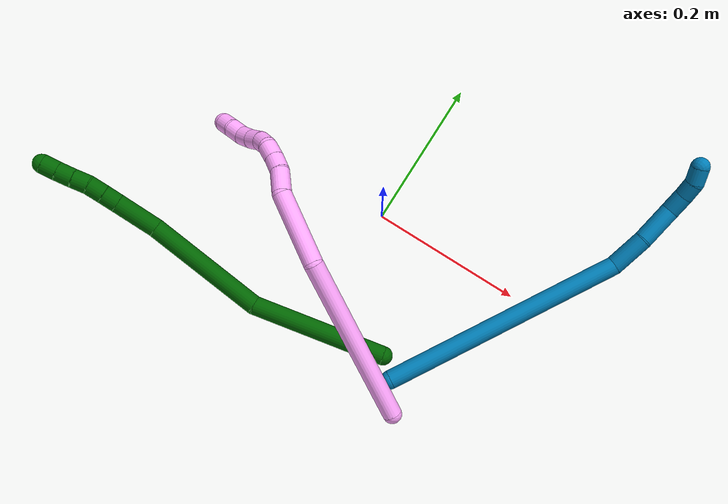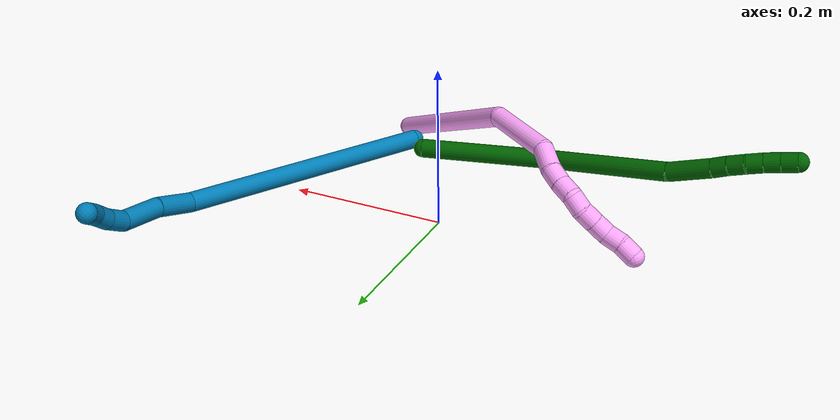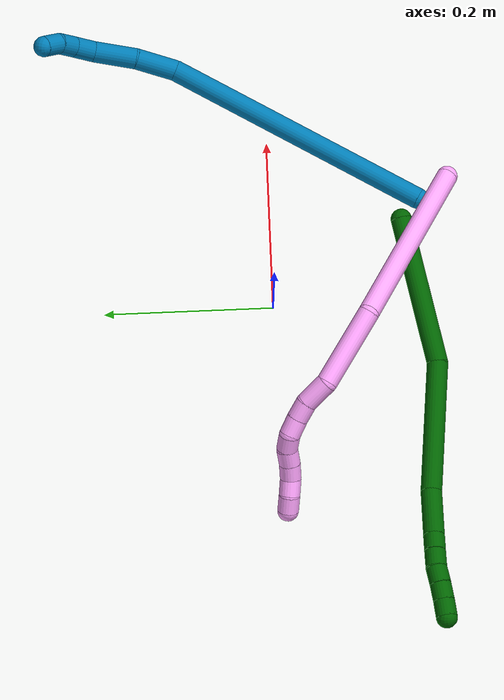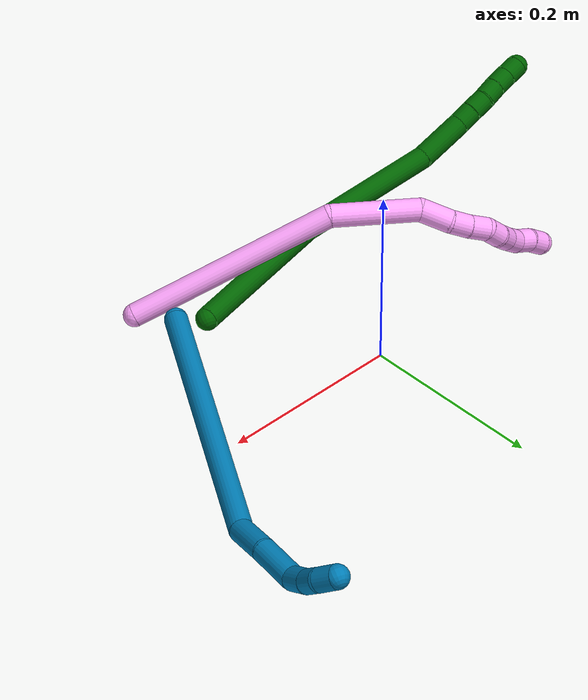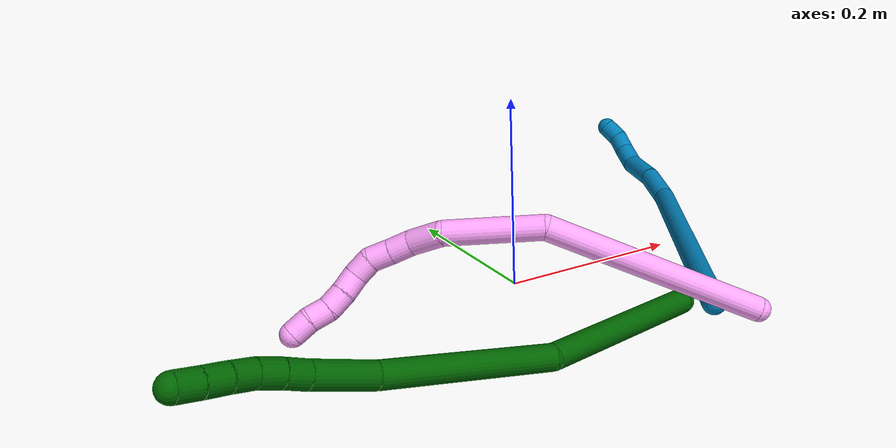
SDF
<sdf version="1.7">
 <world name="default">
  <model name="4">
   <static>0</static>
   <link name="4">
    <collision name="collision-cylinder-e_1_1_4">
     <pose>-0.009463 -0.09215 -0.065344 2.18761 -0.083571 -0.161453</pose>
     <geometry><cylinder><radius>0.0125</radius><length>0.226724</length></cylinder></geometry>
     <surface>
      <friction><ode><mu>1.16</mu><mu2>1.16</mu2><slip1>0</slip1><slip2>0</slip2></ode></friction>
      <contact><ode><kp>1e+06</kp><kd>1</kd><max_vel>0</max_vel><min_depth>0.001</min_depth></ode></contact>
     </surface>
    </collision>
    <visual name="visual-cylinder-e_1_1_4">
     <pose>-0.009463 -0.09215 -0.065344 2.18761 -0.083571 -0.161453</pose>
     <geometry><cylinder><radius>0.0125</radius><length>0.226724</length></cylinder></geometry>
     <material><ambient>1 0.65098 0.996078 1</ambient></material>
    </visual>
    <collision name="collision-cylinder-e_2_4_5">
     <pose>-0.043823 -0.219948 -0.150878 2.0861 -0.546082 -0.895728</pose>
     <geometry><cylinder><radius>0.0125</radius><length>0.095881</length></cylinder></geometry>
     <surface>
      <friction><ode><mu>1.16</mu><mu2>1.16</mu2><slip1>0</slip1><slip2>0</slip2></ode></friction>
      <contact><ode><kp>1e+06</kp><kd>1</kd><max_vel>0</max_vel><min_depth>0.001</min_depth></ode></contact>
     </surface>
    </collision>
    <visual name="visual-cylinder-e_2_4_5">
     <pose>-0.043823 -0.219948 -0.150878 2.0861 -0.546082 -0.895728</pose>
     <geometry><cylinder><radius>0.0125</radius><length>0.095881</length></cylinder></geometry>
     <material><ambient>1 0.65098 0.996078 1</ambient></material>
    </visual>
    <collision name="collision-cylinder-e_3_5_6">
     <pose>-0.080916 -0.267315 -0.171763 1.63008 -0.804418 -0.848031</pose>
     <geometry><cylinder><radius>0.0125</radius><length>0.033856</length></cylinder></geometry>
     <surface>
      <friction><ode><mu>1.16</mu><mu2>1.16</mu2><slip1>0</slip1><slip2>0</slip2></ode></friction>
      <contact><ode><kp>1e+06</kp><kd>1</kd><max_vel>0</max_vel><min_depth>0.001</min_depth></ode></contact>
     </surface>
    </collision>
    <visual name="visual-cylinder-e_3_5_6">
     <pose>-0.080916 -0.267315 -0.171763 1.63008 -0.804418 -0.848031</pose>
     <geometry><cylinder><radius>0.0125</radius><length>0.033856</length></cylinder></geometry>
     <material><ambient>1 0.65098 0.996078 1</ambient></material>
    </visual>
    <collision name="collision-cylinder-e_4_6_7">
     <pose>-0.101817 -0.285127 -0.175278 2.00432 -0.913898 -1.31154</pose>
     <geometry><cylinder><radius>0.0125</radius><length>0.021986</length></cylinder></geometry>
     <surface>
      <friction><ode><mu>1.16</mu><mu2>1.16</mu2><slip1>0</slip1><slip2>0</slip2></ode></friction>
      <contact><ode><kp>1e+06</kp><kd>1</kd><max_vel>0</max_vel><min_depth>0.001</min_depth></ode></contact>
     </surface>
    </collision>
    <visual name="visual-cylinder-e_4_6_7">
     <pose>-0.101817 -0.285127 -0.175278 2.00432 -0.913898 -1.31154</pose>
     <geometry><cylinder><radius>0.0125</radius><length>0.021986</length></cylinder></geometry>
     <material><ambient>1 0.65098 0.996078 1</ambient></material>
    </visual>
    <collision name="collision-cylinder-e_5_7_8">
     <pose>-0.118572 -0.297066 -0.181899 2.14714 -0.856892 -1.3992</pose>
     <geometry><cylinder><radius>0.0125</radius><length>0.021301</length></cylinder></geometry>
     <surface>
      <friction><ode><mu>1.16</mu><mu2>1.16</mu2><slip1>0</slip1><slip2>0</slip2></ode></friction>
      <contact><ode><kp>1e+06</kp><kd>1</kd><max_vel>0</max_vel><min_depth>0.001</min_depth></ode></contact>
     </surface>
    </collision>
    <visual name="visual-cylinder-e_5_7_8">
     <pose>-0.118572 -0.297066 -0.181899 2.14714 -0.856892 -1.3992</pose>
     <geometry><cylinder><radius>0.0125</radius><length>0.021301</length></cylinder></geometry>
     <material><ambient>1 0.65098 0.996078 1</ambient></material>
    </visual>
    <collision name="collision-cylinder-e_6_8_9">
     <pose>-0.136134 -0.304441 -0.188451 2.63482 -1.25131 -2.45328</pose>
     <geometry><cylinder><radius>0.0125</radius><length>0.02004</length></cylinder></geometry>
     <surface>
      <friction><ode><mu>1.16</mu><mu2>1.16</mu2><slip1>0</slip1><slip2>0</slip2></ode></friction>
      <contact><ode><kp>1e+06</kp><kd>1</kd><max_vel>0</max_vel><min_depth>0.001</min_depth></ode></contact>
     </surface>
    </collision>
    <visual name="visual-cylinder-e_6_8_9">
     <pose>-0.136134 -0.304441 -0.188451 2.63482 -1.25131 -2.45328</pose>
     <geometry><cylinder><radius>0.0125</radius><length>0.02004</length></cylinder></geometry>
     <material><ambient>1 0.65098 0.996078 1</ambient></material>
    </visual>
    <collision name="collision-cylinder-e_7_9_10">
     <pose>-0.15455 -0.304967 -0.195712 -2.92306 -1.09217 2.78441</pose>
     <geometry><cylinder><radius>0.0125</radius><length>0.020059</length></cylinder></geometry>
     <surface>
      <friction><ode><mu>1.16</mu><mu2>1.16</mu2><slip1>0</slip1><slip2>0</slip2></ode></friction>
      <contact><ode><kp>1e+06</kp><kd>1</kd><max_vel>0</max_vel><min_depth>0.001</min_depth></ode></contact>
     </surface>
    </collision>
    <visual name="visual-cylinder-e_7_9_10">
     <pose>-0.15455 -0.304967 -0.195712 -2.92306 -1.09217 2.78441</pose>
     <geometry><cylinder><radius>0.0125</radius><length>0.020059</length></cylinder></geometry>
     <material><ambient>1 0.65098 0.996078 1</ambient></material>
    </visual>
    <collision name="collision-cylinder-e_8_10_11">
     <pose>-0.17233 -0.304227 -0.204946 3.08629 -1.08101 -3.04948</pose>
     <geometry><cylinder><radius>0.0125</radius><length>0.020121</length></cylinder></geometry>
     <surface>
      <friction><ode><mu>1.16</mu><mu2>1.16</mu2><slip1>0</slip1><slip2>0</slip2></ode></friction>
      <contact><ode><kp>1e+06</kp><kd>1</kd><max_vel>0</max_vel><min_depth>0.001</min_depth></ode></contact>
     </surface>
    </collision>
    <visual name="visual-cylinder-e_8_10_11">
     <pose>-0.17233 -0.304227 -0.204946 3.08629 -1.08101 -3.04948</pose>
     <geometry><cylinder><radius>0.0125</radius><length>0.020121</length></cylinder></geometry>
     <material><ambient>1 0.65098 0.996078 1</ambient></material>
    </visual>
    <collision name="collision-cylinder-e_9_11_12">
     <pose>-0.188632 -0.307365 -0.215724 2.69785 -0.836639 -2.20242</pose>
     <geometry><cylinder><radius>0.0125</radius><length>0.020003</length></cylinder></geometry>
     <surface>
      <friction><ode><mu>1.16</mu><mu2>1.16</mu2><slip1>0</slip1><slip2>0</slip2></ode></friction>
      <contact><ode><kp>1e+06</kp><kd>1</kd><max_vel>0</max_vel><min_depth>0.001</min_depth></ode></contact>
     </surface>
    </collision>
    <visual name="visual-cylinder-e_9_11_12">
     <pose>-0.188632 -0.307365 -0.215724 2.69785 -0.836639 -2.20242</pose>
     <geometry><cylinder><radius>0.0125</radius><length>0.020003</length></cylinder></geometry>
     <material><ambient>1 0.65098 0.996078 1</ambient></material>
    </visual>
    <collision name="collision-cylinder-e_10_12_2">
     <pose>-0.204899 -0.311974 -0.226147 2.76446 -1.082 -2.52647</pose>
     <geometry><cylinder><radius>0.0125</radius><length>0.02003</length></cylinder></geometry>
     <surface>
      <friction><ode><mu>1.16</mu><mu2>1.16</mu2><slip1>0</slip1><slip2>0</slip2></ode></friction>
      <contact><ode><kp>1e+06</kp><kd>1</kd><max_vel>0</max_vel><min_depth>0.001</min_depth></ode></contact>
     </surface>
    </collision>
    <visual name="visual-cylinder-e_10_12_2">
     <pose>-0.204899 -0.311974 -0.226147 2.76446 -1.082 -2.52647</pose>
     <geometry><cylinder><radius>0.0125</radius><length>0.02003</length></cylinder></geometry>
     <material><ambient>1 0.65098 0.996078 1</ambient></material>
    </visual>
    <collision name="collision-sphere-2">
     <pose>-0.213741 -0.313705 -0.230519 0 -0 0</pose>
     <geometry><sphere><radius>0.0125</radius></sphere></geometry>
     <surface>
      <friction><ode><mu>1.16</mu><mu2>1.16</mu2><slip1>0</slip1><slip2>0</slip2></ode></friction>
      <contact><ode><kp>1e+06</kp><kd>1</kd><max_vel>0</max_vel><min_depth>0.001</min_depth></ode></contact>
     </surface>
    </collision>
    <visual name="visual-sphere-2">
     <pose>-0.213741 -0.313705 -0.230519 0 -0 0</pose>
     <geometry><sphere><radius>0.0125</radius></sphere></geometry>
     <material><ambient>1 0.65098 0.996078 1</ambient></material>
    </visual>
    <collision name="collision-sphere-12">
     <pose>-0.196057 -0.310242 -0.221775 0 -0 0</pose>
     <geometry><sphere><radius>0.0125</radius></sphere></geometry>
     <surface>
      <friction><ode><mu>1.16</mu><mu2>1.16</mu2><slip1>0</slip1><slip2>0</slip2></ode></friction>
      <contact><ode><kp>1e+06</kp><kd>1</kd><max_vel>0</max_vel><min_depth>0.001</min_depth></ode></contact>
     </surface>
    </collision>
    <visual name="visual-sphere-12">
     <pose>-0.196057 -0.310242 -0.221775 0 -0 0</pose>
     <geometry><sphere><radius>0.0125</radius></sphere></geometry>
     <material><ambient>1 0.65098 0.996078 1</ambient></material>
    </visual>
    <collision name="collision-sphere-11">
     <pose>-0.181207 -0.304488 -0.209672 0 -0 0</pose>
     <geometry><sphere><radius>0.0125</radius></sphere></geometry>
     <surface>
      <friction><ode><mu>1.16</mu><mu2>1.16</mu2><slip1>0</slip1><slip2>0</slip2></ode></friction>
      <contact><ode><kp>1e+06</kp><kd>1</kd><max_vel>0</max_vel><min_depth>0.001</min_depth></ode></contact>
     </surface>
    </collision>
    <visual name="visual-sphere-11">
     <pose>-0.181207 -0.304488 -0.209672 0 -0 0</pose>
     <geometry><sphere><radius>0.0125</radius></sphere></geometry>
     <material><ambient>1 0.65098 0.996078 1</ambient></material>
    </visual>
    <collision name="collision-sphere-10">
     <pose>-0.163452 -0.303965 -0.200221 0 -0 0</pose>
     <geometry><sphere><radius>0.0125</radius></sphere></geometry>
     <surface>
      <friction><ode><mu>1.16</mu><mu2>1.16</mu2><slip1>0</slip1><slip2>0</slip2></ode></friction>
      <contact><ode><kp>1e+06</kp><kd>1</kd><max_vel>0</max_vel><min_depth>0.001</min_depth></ode></contact>
     </surface>
    </collision>
    <visual name="visual-sphere-10">
     <pose>-0.163452 -0.303965 -0.200221 0 -0 0</pose>
     <geometry><sphere><radius>0.0125</radius></sphere></geometry>
     <material><ambient>1 0.65098 0.996078 1</ambient></material>
    </visual>
    <collision name="collision-sphere-9">
     <pose>-0.145647 -0.305968 -0.191202 0 -0 0</pose>
     <geometry><sphere><radius>0.0125</radius></sphere></geometry>
     <surface>
      <friction><ode><mu>1.16</mu><mu2>1.16</mu2><slip1>0</slip1><slip2>0</slip2></ode></friction>
      <contact><ode><kp>1e+06</kp><kd>1</kd><max_vel>0</max_vel><min_depth>0.001</min_depth></ode></contact>
     </surface>
    </collision>
    <visual name="visual-sphere-9">
     <pose>-0.145647 -0.305968 -0.191202 0 -0 0</pose>
     <geometry><sphere><radius>0.0125</radius></sphere></geometry>
     <material><ambient>1 0.65098 0.996078 1</ambient></material>
    </visual>
    <collision name="collision-sphere-4">
     <pose>-0.018925 -0.184299 -0.130688 0 -0 0</pose>
     <geometry><sphere><radius>0.0125</radius></sphere></geometry>
     <surface>
      <friction><ode><mu>1.16</mu><mu2>1.16</mu2><slip1>0</slip1><slip2>0</slip2></ode></friction>
      <contact><ode><kp>1e+06</kp><kd>1</kd><max_vel>0</max_vel><min_depth>0.001</min_depth></ode></contact>
     </surface>
    </collision>
    <visual name="visual-sphere-4">
     <pose>-0.018925 -0.184299 -0.130688 0 -0 0</pose>
     <geometry><sphere><radius>0.0125</radius></sphere></geometry>
     <material><ambient>1 0.65098 0.996078 1</ambient></material>
    </visual>
    <collision name="collision-sphere-1">
     <geometry><sphere><radius>0.0125</radius></sphere></geometry>
     <surface>
      <friction><ode><mu>1.16</mu><mu2>1.16</mu2><slip1>0</slip1><slip2>0</slip2></ode></friction>
      <contact><ode><kp>1e+06</kp><kd>1</kd><max_vel>0</max_vel><min_depth>0.001</min_depth></ode></contact>
     </surface>
    </collision>
    <visual name="visual-sphere-1">
     <geometry><sphere><radius>0.0125</radius></sphere></geometry>
     <material><ambient>1 0.65098 0.996078 1</ambient></material>
    </visual>
    <collision name="collision-sphere-8">
     <pose>-0.126621 -0.302913 -0.185699 0 -0 0</pose>
     <geometry><sphere><radius>0.0125</radius></sphere></geometry>
     <surface>
      <friction><ode><mu>1.16</mu><mu2>1.16</mu2><slip1>0</slip1><slip2>0</slip2></ode></friction>
      <contact><ode><kp>1e+06</kp><kd>1</kd><max_vel>0</max_vel><min_depth>0.001</min_depth></ode></contact>
     </surface>
    </collision>
    <visual name="visual-sphere-8">
     <pose>-0.126621 -0.302913 -0.185699 0 -0 0</pose>
     <geometry><sphere><radius>0.0125</radius></sphere></geometry>
     <material><ambient>1 0.65098 0.996078 1</ambient></material>
    </visual>
    <collision name="collision-sphere-5">
     <pose>-0.068721 -0.255596 -0.171067 0 -0 0</pose>
     <geometry><sphere><radius>0.0125</radius></sphere></geometry>
     <surface>
      <friction><ode><mu>1.16</mu><mu2>1.16</mu2><slip1>0</slip1><slip2>0</slip2></ode></friction>
      <contact><ode><kp>1e+06</kp><kd>1</kd><max_vel>0</max_vel><min_depth>0.001</min_depth></ode></contact>
     </surface>
    </collision>
    <visual name="visual-sphere-5">
     <pose>-0.068721 -0.255596 -0.171067 0 -0 0</pose>
     <geometry><sphere><radius>0.0125</radius></sphere></geometry>
     <material><ambient>1 0.65098 0.996078 1</ambient></material>
    </visual>
    <collision name="collision-sphere-6">
     <pose>-0.093111 -0.279035 -0.172458 0 -0 0</pose>
     <geometry><sphere><radius>0.0125</radius></sphere></geometry>
     <surface>
      <friction><ode><mu>1.16</mu><mu2>1.16</mu2><slip1>0</slip1><slip2>0</slip2></ode></friction>
      <contact><ode><kp>1e+06</kp><kd>1</kd><max_vel>0</max_vel><min_depth>0.001</min_depth></ode></contact>
     </surface>
    </collision>
    <visual name="visual-sphere-6">
     <pose>-0.093111 -0.279035 -0.172458 0 -0 0</pose>
     <geometry><sphere><radius>0.0125</radius></sphere></geometry>
     <material><ambient>1 0.65098 0.996078 1</ambient></material>
    </visual>
    <collision name="collision-sphere-7">
     <pose>-0.110522 -0.291219 -0.178098 0 -0 0</pose>
     <geometry><sphere><radius>0.0125</radius></sphere></geometry>
     <surface>
      <friction><ode><mu>1.16</mu><mu2>1.16</mu2><slip1>0</slip1><slip2>0</slip2></ode></friction>
      <contact><ode><kp>1e+06</kp><kd>1</kd><max_vel>0</max_vel><min_depth>0.001</min_depth></ode></contact>
     </surface>
    </collision>
    <visual name="visual-sphere-7">
     <pose>-0.110522 -0.291219 -0.178098 0 -0 0</pose>
     <geometry><sphere><radius>0.0125</radius></sphere></geometry>
     <material><ambient>1 0.65098 0.996078 1</ambient></material>
    </visual>
    <inertial>
     <pose>-0.062048 -0.188729 -0.126991 0 -0 0</pose>
     <mass>0.5</mass>
     <inertia>
      <ixx>0.000774</ixx>
      <ixy>0</ixy>
      <ixz>0</ixz>
      <iyy>-0.000773</iyy>
      <iyz>0</iyz>
      <izz>0.000976</izz>
     </inertia>
    </inertial>
   </link>
   <pose>0.148665 -0.212302 0.011961 -2.30266 -1.0677 -0.396358</pose>
  </model>
  <model name="6">
   <static>0</static>
   <link name="6">
    <collision name="collision-cylinder-e_1_1_4">
     <pose>-0.08075 0.004482 -0.038743 -3.02643 -1.12085 2.95839</pose>
     <geometry><cylinder><radius>0.0125</radius><length>0.17935</length></cylinder></geometry>
     <surface>
      <friction><ode><mu>1.16</mu><mu2>1.16</mu2><slip1>0</slip1><slip2>0</slip2></ode></friction>
      <contact><ode><kp>1e+06</kp><kd>1</kd><max_vel>0</max_vel><min_depth>0.001</min_depth></ode></contact>
     </surface>
    </collision>
    <visual name="visual-cylinder-e_1_1_4">
     <pose>-0.08075 0.004482 -0.038743 -3.02643 -1.12085 2.95839</pose>
     <geometry><cylinder><radius>0.0125</radius><length>0.17935</length></cylinder></geometry>
     <material><ambient>0 0.392157 0.003922 1</ambient></material>
    </visual>
    <collision name="collision-cylinder-e_2_4_5">
     <pose>-0.236848 -0.007855 -0.09825 2.46078 -1.23002 -2.21205</pose>
     <geometry><cylinder><radius>0.0125</radius><length>0.159891</length></cylinder></geometry>
     <surface>
      <friction><ode><mu>1.16</mu><mu2>1.16</mu2><slip1>0</slip1><slip2>0</slip2></ode></friction>
      <contact><ode><kp>1e+06</kp><kd>1</kd><max_vel>0</max_vel><min_depth>0.001</min_depth></ode></contact>
     </surface>
    </collision>
    <visual name="visual-cylinder-e_2_4_5">
     <pose>-0.236848 -0.007855 -0.09825 2.46078 -1.23002 -2.21205</pose>
     <geometry><cylinder><radius>0.0125</radius><length>0.159891</length></cylinder></geometry>
     <material><ambient>0 0.392157 0.003922 1</ambient></material>
    </visual>
    <collision name="collision-cylinder-e_3_5_6">
     <pose>-0.337113 -0.032905 -0.130735 2.52931 -1.04904 -2.1416</pose>
     <geometry><cylinder><radius>0.0125</radius><length>0.057482</length></cylinder></geometry>
     <surface>
      <friction><ode><mu>1.16</mu><mu2>1.16</mu2><slip1>0</slip1><slip2>0</slip2></ode></friction>
      <contact><ode><kp>1e+06</kp><kd>1</kd><max_vel>0</max_vel><min_depth>0.001</min_depth></ode></contact>
     </surface>
    </collision>
    <visual name="visual-cylinder-e_3_5_6">
     <pose>-0.337113 -0.032905 -0.130735 2.52931 -1.04904 -2.1416</pose>
     <geometry><cylinder><radius>0.0125</radius><length>0.057482</length></cylinder></geometry>
     <material><ambient>0 0.392157 0.003922 1</ambient></material>
    </visual>
    <collision name="collision-cylinder-e_4_6_7">
     <pose>-0.370621 -0.044543 -0.146918 2.48962 -0.992164 -2.02498</pose>
     <geometry><cylinder><radius>0.0125</radius><length>0.020523</length></cylinder></geometry>
     <surface>
      <friction><ode><mu>1.16</mu><mu2>1.16</mu2><slip1>0</slip1><slip2>0</slip2></ode></friction>
      <contact><ode><kp>1e+06</kp><kd>1</kd><max_vel>0</max_vel><min_depth>0.001</min_depth></ode></contact>
     </surface>
    </collision>
    <visual name="visual-cylinder-e_4_6_7">
     <pose>-0.370621 -0.044543 -0.146918 2.48962 -0.992164 -2.02498</pose>
     <geometry><cylinder><radius>0.0125</radius><length>0.020523</length></cylinder></geometry>
     <material><ambient>0 0.392157 0.003922 1</ambient></material>
    </visual>
    <collision name="collision-cylinder-e_5_7_8">
     <pose>-0.388389 -0.050852 -0.155838 2.56439 -1.0453 -2.18987</pose>
     <geometry><cylinder><radius>0.0125</radius><length>0.021215</length></cylinder></geometry>
     <surface>
      <friction><ode><mu>1.16</mu><mu2>1.16</mu2><slip1>0</slip1><slip2>0</slip2></ode></friction>
      <contact><ode><kp>1e+06</kp><kd>1</kd><max_vel>0</max_vel><min_depth>0.001</min_depth></ode></contact>
     </surface>
    </collision>
    <visual name="visual-cylinder-e_5_7_8">
     <pose>-0.388389 -0.050852 -0.155838 2.56439 -1.0453 -2.18987</pose>
     <geometry><cylinder><radius>0.0125</radius><length>0.021215</length></cylinder></geometry>
     <material><ambient>0 0.392157 0.003922 1</ambient></material>
    </visual>
    <collision name="collision-cylinder-e_6_8_9">
     <pose>-0.406305 -0.05496 -0.165527 2.91537 -1.02014 -2.74094</pose>
     <geometry><cylinder><radius>0.0125</radius><length>0.020513</length></cylinder></geometry>
     <surface>
      <friction><ode><mu>1.16</mu><mu2>1.16</mu2><slip1>0</slip1><slip2>0</slip2></ode></friction>
      <contact><ode><kp>1e+06</kp><kd>1</kd><max_vel>0</max_vel><min_depth>0.001</min_depth></ode></contact>
     </surface>
    </collision>
    <visual name="visual-cylinder-e_6_8_9">
     <pose>-0.406305 -0.05496 -0.165527 2.91537 -1.02014 -2.74094</pose>
     <geometry><cylinder><radius>0.0125</radius><length>0.020513</length></cylinder></geometry>
     <material><ambient>0 0.392157 0.003922 1</ambient></material>
    </visual>
    <collision name="collision-cylinder-e_7_9_10">
     <pose>-0.424128 -0.057099 -0.175524 2.94765 -1.07966 -2.81972</pose>
     <geometry><cylinder><radius>0.0125</radius><length>0.020598</length></cylinder></geometry>
     <surface>
      <friction><ode><mu>1.16</mu><mu2>1.16</mu2><slip1>0</slip1><slip2>0</slip2></ode></friction>
      <contact><ode><kp>1e+06</kp><kd>1</kd><max_vel>0</max_vel><min_depth>0.001</min_depth></ode></contact>
     </surface>
    </collision>
    <visual name="visual-cylinder-e_7_9_10">
     <pose>-0.424128 -0.057099 -0.175524 2.94765 -1.07966 -2.81972</pose>
     <geometry><cylinder><radius>0.0125</radius><length>0.020598</length></cylinder></geometry>
     <material><ambient>0 0.392157 0.003922 1</ambient></material>
    </visual>
    <collision name="collision-cylinder-e_8_10_2">
     <pose>-0.442304 -0.059248 -0.184775 2.87767 -1.09851 -2.71449</pose>
     <geometry><cylinder><radius>0.0125</radius><length>0.020426</length></cylinder></geometry>
     <surface>
      <friction><ode><mu>1.16</mu><mu2>1.16</mu2><slip1>0</slip1><slip2>0</slip2></ode></friction>
      <contact><ode><kp>1e+06</kp><kd>1</kd><max_vel>0</max_vel><min_depth>0.001</min_depth></ode></contact>
     </surface>
    </collision>
    <visual name="visual-cylinder-e_8_10_2">
     <pose>-0.442304 -0.059248 -0.184775 2.87767 -1.09851 -2.71449</pose>
     <geometry><cylinder><radius>0.0125</radius><length>0.020426</length></cylinder></geometry>
     <material><ambient>0 0.392157 0.003922 1</ambient></material>
    </visual>
    <collision name="collision-sphere-2">
     <pose>-0.451399 -0.06046 -0.189261 0 -0 0</pose>
     <geometry><sphere><radius>0.0125</radius></sphere></geometry>
     <surface>
      <friction><ode><mu>1.16</mu><mu2>1.16</mu2><slip1>0</slip1><slip2>0</slip2></ode></friction>
      <contact><ode><kp>1e+06</kp><kd>1</kd><max_vel>0</max_vel><min_depth>0.001</min_depth></ode></contact>
     </surface>
    </collision>
    <visual name="visual-sphere-2">
     <pose>-0.451399 -0.06046 -0.189261 0 -0 0</pose>
     <geometry><sphere><radius>0.0125</radius></sphere></geometry>
     <material><ambient>0 0.392157 0.003922 1</ambient></material>
    </visual>
    <collision name="collision-sphere-10">
     <pose>-0.433209 -0.058036 -0.18029 0 -0 0</pose>
     <geometry><sphere><radius>0.0125</radius></sphere></geometry>
     <surface>
      <friction><ode><mu>1.16</mu><mu2>1.16</mu2><slip1>0</slip1><slip2>0</slip2></ode></friction>
      <contact><ode><kp>1e+06</kp><kd>1</kd><max_vel>0</max_vel><min_depth>0.001</min_depth></ode></contact>
     </surface>
    </collision>
    <visual name="visual-sphere-10">
     <pose>-0.433209 -0.058036 -0.18029 0 -0 0</pose>
     <geometry><sphere><radius>0.0125</radius></sphere></geometry>
     <material><ambient>0 0.392157 0.003922 1</ambient></material>
    </visual>
    <collision name="collision-sphere-9">
     <pose>-0.415046 -0.056163 -0.170757 0 -0 0</pose>
     <geometry><sphere><radius>0.0125</radius></sphere></geometry>
     <surface>
      <friction><ode><mu>1.16</mu><mu2>1.16</mu2><slip1>0</slip1><slip2>0</slip2></ode></friction>
      <contact><ode><kp>1e+06</kp><kd>1</kd><max_vel>0</max_vel><min_depth>0.001</min_depth></ode></contact>
     </surface>
    </collision>
    <visual name="visual-sphere-9">
     <pose>-0.415046 -0.056163 -0.170757 0 -0 0</pose>
     <geometry><sphere><radius>0.0125</radius></sphere></geometry>
     <material><ambient>0 0.392157 0.003922 1</ambient></material>
    </visual>
    <collision name="collision-sphere-4">
     <pose>-0.161499 0.008963 -0.077487 0 -0 0</pose>
     <geometry><sphere><radius>0.0125</radius></sphere></geometry>
     <surface>
      <friction><ode><mu>1.16</mu><mu2>1.16</mu2><slip1>0</slip1><slip2>0</slip2></ode></friction>
      <contact><ode><kp>1e+06</kp><kd>1</kd><max_vel>0</max_vel><min_depth>0.001</min_depth></ode></contact>
     </surface>
    </collision>
    <visual name="visual-sphere-4">
     <pose>-0.161499 0.008963 -0.077487 0 -0 0</pose>
     <geometry><sphere><radius>0.0125</radius></sphere></geometry>
     <material><ambient>0 0.392157 0.003922 1</ambient></material>
    </visual>
    <collision name="collision-sphere-1">
     <geometry><sphere><radius>0.0125</radius></sphere></geometry>
     <surface>
      <friction><ode><mu>1.16</mu><mu2>1.16</mu2><slip1>0</slip1><slip2>0</slip2></ode></friction>
      <contact><ode><kp>1e+06</kp><kd>1</kd><max_vel>0</max_vel><min_depth>0.001</min_depth></ode></contact>
     </surface>
    </collision>
    <visual name="visual-sphere-1">
     <geometry><sphere><radius>0.0125</radius></sphere></geometry>
     <material><ambient>0 0.392157 0.003922 1</ambient></material>
    </visual>
    <collision name="collision-sphere-8">
     <pose>-0.397565 -0.053756 -0.160297 0 -0 0</pose>
     <geometry><sphere><radius>0.0125</radius></sphere></geometry>
     <surface>
      <friction><ode><mu>1.16</mu><mu2>1.16</mu2><slip1>0</slip1><slip2>0</slip2></ode></friction>
      <contact><ode><kp>1e+06</kp><kd>1</kd><max_vel>0</max_vel><min_depth>0.001</min_depth></ode></contact>
     </surface>
    </collision>
    <visual name="visual-sphere-8">
     <pose>-0.397565 -0.053756 -0.160297 0 -0 0</pose>
     <geometry><sphere><radius>0.0125</radius></sphere></geometry>
     <material><ambient>0 0.392157 0.003922 1</ambient></material>
    </visual>
    <collision name="collision-sphere-5">
     <pose>-0.312196 -0.024672 -0.119012 0 -0 0</pose>
     <geometry><sphere><radius>0.0125</radius></sphere></geometry>
     <surface>
      <friction><ode><mu>1.16</mu><mu2>1.16</mu2><slip1>0</slip1><slip2>0</slip2></ode></friction>
      <contact><ode><kp>1e+06</kp><kd>1</kd><max_vel>0</max_vel><min_depth>0.001</min_depth></ode></contact>
     </surface>
    </collision>
    <visual name="visual-sphere-5">
     <pose>-0.312196 -0.024672 -0.119012 0 -0 0</pose>
     <geometry><sphere><radius>0.0125</radius></sphere></geometry>
     <material><ambient>0 0.392157 0.003922 1</ambient></material>
    </visual>
    <collision name="collision-sphere-6">
     <pose>-0.36203 -0.041138 -0.142457 0 -0 0</pose>
     <geometry><sphere><radius>0.0125</radius></sphere></geometry>
     <surface>
      <friction><ode><mu>1.16</mu><mu2>1.16</mu2><slip1>0</slip1><slip2>0</slip2></ode></friction>
      <contact><ode><kp>1e+06</kp><kd>1</kd><max_vel>0</max_vel><min_depth>0.001</min_depth></ode></contact>
     </surface>
    </collision>
    <visual name="visual-sphere-6">
     <pose>-0.36203 -0.041138 -0.142457 0 -0 0</pose>
     <geometry><sphere><radius>0.0125</radius></sphere></geometry>
     <material><ambient>0 0.392157 0.003922 1</ambient></material>
    </visual>
    <collision name="collision-sphere-7">
     <pose>-0.379212 -0.047948 -0.151379 0 -0 0</pose>
     <geometry><sphere><radius>0.0125</radius></sphere></geometry>
     <surface>
      <friction><ode><mu>1.16</mu><mu2>1.16</mu2><slip1>0</slip1><slip2>0</slip2></ode></friction>
      <contact><ode><kp>1e+06</kp><kd>1</kd><max_vel>0</max_vel><min_depth>0.001</min_depth></ode></contact>
     </surface>
    </collision>
    <visual name="visual-sphere-7">
     <pose>-0.379212 -0.047948 -0.151379 0 -0 0</pose>
     <geometry><sphere><radius>0.0125</radius></sphere></geometry>
     <material><ambient>0 0.392157 0.003922 1</ambient></material>
    </visual>
    <inertial>
     <pose>-0.227364 -0.015701 -0.094559 0 -0 0</pose>
     <mass>0.5</mass>
     <inertia>
      <ixx>-0.000385</ixx>
      <ixy>0</ixy>
      <ixz>0</ixz>
      <iyy>0.000766</iyy>
      <iyz>0</iyz>
      <izz>0.000829</izz>
     </inertia>
    </inertial>
   </link>
   <pose>0.098892 -0.155514 0.012478 -2.11631 -0.17169 -0.216127</pose>
  </model>
  <model name="9">
   <static>0</static>
   <link name="9">
    <collision name="collision-cylinder-e_1_1_4">
     <pose>0.034555 0.06823 -0.145187 -2.70228 0.212161 -0.890049</pose>
     <geometry><cylinder><radius>0.0125</radius><length>0.328198</length></cylinder></geometry>
     <surface>
      <friction><ode><mu>1.16</mu><mu2>1.16</mu2><slip1>0</slip1><slip2>0</slip2></ode></friction>
      <contact><ode><kp>1e+06</kp><kd>1</kd><max_vel>0</max_vel><min_depth>0.001</min_depth></ode></contact>
     </surface>
    </collision>
    <visual name="visual-cylinder-e_1_1_4">
     <pose>0.034555 0.06823 -0.145187 -2.70228 0.212161 -0.890049</pose>
     <geometry><cylinder><radius>0.0125</radius><length>0.328198</length></cylinder></geometry>
     <material><ambient>0 0.490196 0.709804 1</ambient></material>
    </visual>
    <collision name="collision-cylinder-e_2_4_5">
     <pose>0.067972 0.152577 -0.309095 -2.43078 -0.046025 0.123864</pose>
     <geometry><cylinder><radius>0.0125</radius><length>0.04946</length></cylinder></geometry>
     <surface>
      <friction><ode><mu>1.16</mu><mu2>1.16</mu2><slip1>0</slip1><slip2>0</slip2></ode></friction>
      <contact><ode><kp>1e+06</kp><kd>1</kd><max_vel>0</max_vel><min_depth>0.001</min_depth></ode></contact>
     </surface>
    </collision>
    <visual name="visual-cylinder-e_2_4_5">
     <pose>0.067972 0.152577 -0.309095 -2.43078 -0.046025 0.123864</pose>
     <geometry><cylinder><radius>0.0125</radius><length>0.04946</length></cylinder></geometry>
     <material><ambient>0 0.490196 0.709804 1</ambient></material>
    </visual>
    <collision name="collision-cylinder-e_3_5_6">
     <pose>0.063388 0.181692 -0.34988 -2.60924 -0.133774 0.481839</pose>
     <geometry><cylinder><radius>0.0125</radius><length>0.051677</length></cylinder></geometry>
     <surface>
      <friction><ode><mu>1.16</mu><mu2>1.16</mu2><slip1>0</slip1><slip2>0</slip2></ode></friction>
      <contact><ode><kp>1e+06</kp><kd>1</kd><max_vel>0</max_vel><min_depth>0.001</min_depth></ode></contact>
     </surface>
    </collision>
    <visual name="visual-cylinder-e_3_5_6">
     <pose>0.063388 0.181692 -0.34988 -2.60924 -0.133774 0.481839</pose>
     <geometry><cylinder><radius>0.0125</radius><length>0.051677</length></cylinder></geometry>
     <material><ambient>0 0.490196 0.709804 1</ambient></material>
    </visual>
    <collision name="collision-cylinder-e_4_6_7">
     <pose>0.057947 0.205735 -0.379237 -2.1544 -0.149583 0.276767</pose>
     <geometry><cylinder><radius>0.0125</radius><length>0.02677</length></cylinder></geometry>
     <surface>
      <friction><ode><mu>1.16</mu><mu2>1.16</mu2><slip1>0</slip1><slip2>0</slip2></ode></friction>
      <contact><ode><kp>1e+06</kp><kd>1</kd><max_vel>0</max_vel><min_depth>0.001</min_depth></ode></contact>
     </surface>
    </collision>
    <visual name="visual-cylinder-e_4_6_7">
     <pose>0.057947 0.205735 -0.379237 -2.1544 -0.149583 0.276767</pose>
     <geometry><cylinder><radius>0.0125</radius><length>0.02677</length></cylinder></geometry>
     <material><ambient>0 0.490196 0.709804 1</ambient></material>
    </visual>
    <collision name="collision-cylinder-e_5_7_8">
     <pose>0.05385 0.226583 -0.390681 -1.97128 -0.194935 0.293034</pose>
     <geometry><cylinder><radius>0.0125</radius><length>0.021703</length></cylinder></geometry>
     <surface>
      <friction><ode><mu>1.16</mu><mu2>1.16</mu2><slip1>0</slip1><slip2>0</slip2></ode></friction>
      <contact><ode><kp>1e+06</kp><kd>1</kd><max_vel>0</max_vel><min_depth>0.001</min_depth></ode></contact>
     </surface>
    </collision>
    <visual name="visual-cylinder-e_5_7_8">
     <pose>0.05385 0.226583 -0.390681 -1.97128 -0.194935 0.293034</pose>
     <geometry><cylinder><radius>0.0125</radius><length>0.021703</length></cylinder></geometry>
     <material><ambient>0 0.490196 0.709804 1</ambient></material>
    </visual>
    <collision name="collision-cylinder-e_6_8_2">
     <pose>0.046135 0.245118 -0.398752 -1.99289 -0.530407 0.794754</pose>
     <geometry><cylinder><radius>0.0125</radius><length>0.022192</length></cylinder></geometry>
     <surface>
      <friction><ode><mu>1.16</mu><mu2>1.16</mu2><slip1>0</slip1><slip2>0</slip2></ode></friction>
      <contact><ode><kp>1e+06</kp><kd>1</kd><max_vel>0</max_vel><min_depth>0.001</min_depth></ode></contact>
     </surface>
    </collision>
    <visual name="visual-cylinder-e_6_8_2">
     <pose>0.046135 0.245118 -0.398752 -1.99289 -0.530407 0.794754</pose>
     <geometry><cylinder><radius>0.0125</radius><length>0.022192</length></cylinder></geometry>
     <material><ambient>0 0.490196 0.709804 1</ambient></material>
    </visual>
    <collision name="collision-sphere-2">
     <pose>0.040521 0.25385 -0.402674 0 -0 0</pose>
     <geometry><sphere><radius>0.0125</radius></sphere></geometry>
     <surface>
      <friction><ode><mu>1.16</mu><mu2>1.16</mu2><slip1>0</slip1><slip2>0</slip2></ode></friction>
      <contact><ode><kp>1e+06</kp><kd>1</kd><max_vel>0</max_vel><min_depth>0.001</min_depth></ode></contact>
     </surface>
    </collision>
    <visual name="visual-sphere-2">
     <pose>0.040521 0.25385 -0.402674 0 -0 0</pose>
     <geometry><sphere><radius>0.0125</radius></sphere></geometry>
     <material><ambient>0 0.490196 0.709804 1</ambient></material>
    </visual>
    <collision name="collision-sphere-4">
     <pose>0.069109 0.136459 -0.290373 0 -0 0</pose>
     <geometry><sphere><radius>0.0125</radius></sphere></geometry>
     <surface>
      <friction><ode><mu>1.16</mu><mu2>1.16</mu2><slip1>0</slip1><slip2>0</slip2></ode></friction>
      <contact><ode><kp>1e+06</kp><kd>1</kd><max_vel>0</max_vel><min_depth>0.001</min_depth></ode></contact>
     </surface>
    </collision>
    <visual name="visual-sphere-4">
     <pose>0.069109 0.136459 -0.290373 0 -0 0</pose>
     <geometry><sphere><radius>0.0125</radius></sphere></geometry>
     <material><ambient>0 0.490196 0.709804 1</ambient></material>
    </visual>
    <collision name="collision-sphere-1">
     <geometry><sphere><radius>0.0125</radius></sphere></geometry>
     <surface>
      <friction><ode><mu>1.16</mu><mu2>1.16</mu2><slip1>0</slip1><slip2>0</slip2></ode></friction>
      <contact><ode><kp>1e+06</kp><kd>1</kd><max_vel>0</max_vel><min_depth>0.001</min_depth></ode></contact>
     </surface>
    </collision>
    <visual name="visual-sphere-1">
     <geometry><sphere><radius>0.0125</radius></sphere></geometry>
     <material><ambient>0 0.490196 0.709804 1</ambient></material>
    </visual>
    <collision name="collision-sphere-8">
     <pose>0.051748 0.236386 -0.394831 0 -0 0</pose>
     <geometry><sphere><radius>0.0125</radius></sphere></geometry>
     <surface>
      <friction><ode><mu>1.16</mu><mu2>1.16</mu2><slip1>0</slip1><slip2>0</slip2></ode></friction>
      <contact><ode><kp>1e+06</kp><kd>1</kd><max_vel>0</max_vel><min_depth>0.001</min_depth></ode></contact>
     </surface>
    </collision>
    <visual name="visual-sphere-8">
     <pose>0.051748 0.236386 -0.394831 0 -0 0</pose>
     <geometry><sphere><radius>0.0125</radius></sphere></geometry>
     <material><ambient>0 0.490196 0.709804 1</ambient></material>
    </visual>
    <collision name="collision-sphere-5">
     <pose>0.066834 0.168695 -0.327816 0 -0 0</pose>
     <geometry><sphere><radius>0.0125</radius></sphere></geometry>
     <surface>
      <friction><ode><mu>1.16</mu><mu2>1.16</mu2><slip1>0</slip1><slip2>0</slip2></ode></friction>
      <contact><ode><kp>1e+06</kp><kd>1</kd><max_vel>0</max_vel><min_depth>0.001</min_depth></ode></contact>
     </surface>
    </collision>
    <visual name="visual-sphere-5">
     <pose>0.066834 0.168695 -0.327816 0 -0 0</pose>
     <geometry><sphere><radius>0.0125</radius></sphere></geometry>
     <material><ambient>0 0.490196 0.709804 1</ambient></material>
    </visual>
    <collision name="collision-sphere-6">
     <pose>0.059941 0.19469 -0.371944 0 -0 0</pose>
     <geometry><sphere><radius>0.0125</radius></sphere></geometry>
     <surface>
      <friction><ode><mu>1.16</mu><mu2>1.16</mu2><slip1>0</slip1><slip2>0</slip2></ode></friction>
      <contact><ode><kp>1e+06</kp><kd>1</kd><max_vel>0</max_vel><min_depth>0.001</min_depth></ode></contact>
     </surface>
    </collision>
    <visual name="visual-sphere-6">
     <pose>0.059941 0.19469 -0.371944 0 -0 0</pose>
     <geometry><sphere><radius>0.0125</radius></sphere></geometry>
     <material><ambient>0 0.490196 0.709804 1</ambient></material>
    </visual>
    <collision name="collision-sphere-7">
     <pose>0.055952 0.21678 -0.38653 0 -0 0</pose>
     <geometry><sphere><radius>0.0125</radius></sphere></geometry>
     <surface>
      <friction><ode><mu>1.16</mu><mu2>1.16</mu2><slip1>0</slip1><slip2>0</slip2></ode></friction>
      <contact><ode><kp>1e+06</kp><kd>1</kd><max_vel>0</max_vel><min_depth>0.001</min_depth></ode></contact>
     </surface>
    </collision>
    <visual name="visual-sphere-7">
     <pose>0.055952 0.21678 -0.38653 0 -0 0</pose>
     <geometry><sphere><radius>0.0125</radius></sphere></geometry>
     <material><ambient>0 0.490196 0.709804 1</ambient></material>
    </visual>
    <inertial>
     <pose>0.043444 0.110387 -0.216998 0 -0 0</pose>
     <mass>0.5</mass>
     <inertia>
      <ixx>-0.000385</ixx>
      <ixy>0</ixy>
      <ixz>0</ixz>
      <iyy>-0.003718</iyy>
      <iyz>0</iyz>
      <izz>-0.0019</izz>
     </inertia>
    </inertial>
   </link>
   <pose>0.12304 -0.176803 0.012257 1.12596 -0.021841 -0.328214</pose>
  </model>
 </world>
</sdf>
